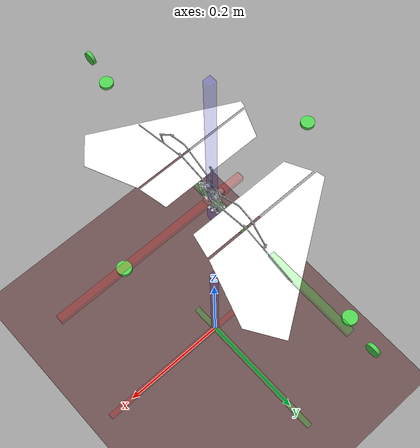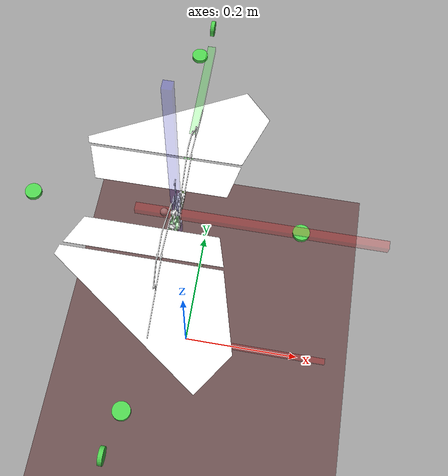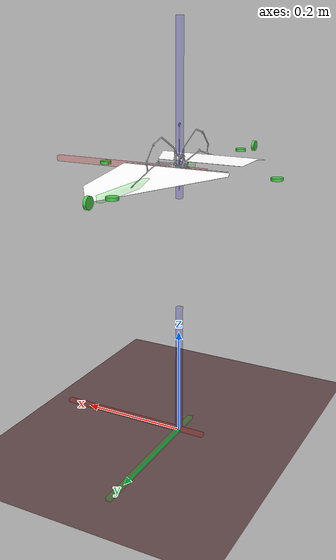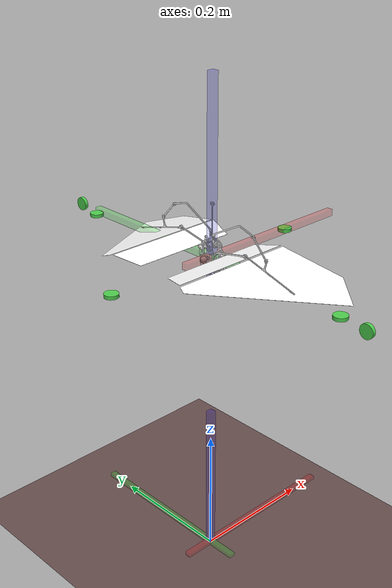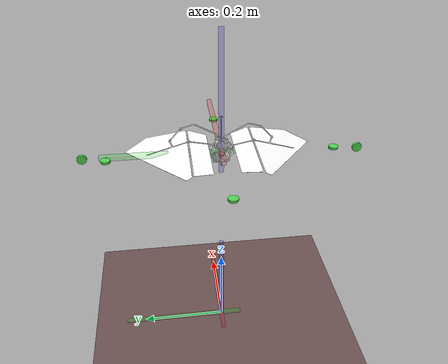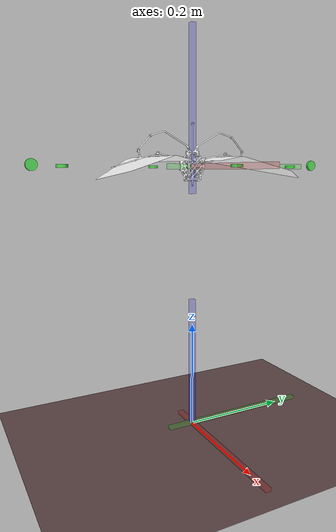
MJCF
<mujoco model="Flappy_v8">
  <compiler angle="radian" meshdir="meshes_v8/" balanceinertia="true" />
  <option impratio="1" gravity="0 0 -9.81"  integrator="implicitfast" density="1.225" viscosity="1.789e-5"> Uncomment this to enable aerodynamics
  </option>
  <visual>
    <global offwidth="3000" offheight="3000"/>
  </visual>
  <asset>
    <texture builtin="gradient" type="skybox" height="100" width="100" rgb1="1 1 1" rgb2=".6 .8 1"/>
    <texture name="texgeom" builtin="flat" height="1278" mark="cross" markrgb="1 1 1" random="0.01" rgb1="0.8 0.6 0.4" rgb2="0.8 0.6 0.4" type="cube" width="127"/>
    <texture name="texplane" builtin="checker" height="100" width="100" rgb1="0 0 0" rgb2="0.8 0.8 0.8" type="2d"/>
    <material name="MatPlane" reflectance="0.5" shininess="1" specular="1" texrepeat="60 60" texture="texplane"/>
    <mesh name="Base" file="Base.STL"/>
    <mesh name="L1" file="L1.STL"/>
    <mesh name="L2" file="L2.STL"/>
    <mesh name="L1R" file="L1R.STL"/>
    <mesh name="L2R" file="L2R.STL"/>
    <mesh name="L3" file="L3.STL"/>
    <mesh name="L7" file="L7.STL"/>
    <mesh name="L6" file="L6.STL"/>
    <mesh name="L5" file="L5.STL"/>
    <mesh name="L4" file="L4.STL"/>
    <mesh name="L3R" file="L3R.STL"/>
    <mesh name="L7R" file="L7R.STL"/>
    <mesh name="L6R" file="L6R.STL"/>
    <mesh name="L5R" file="L5R.STL"/>
    <mesh name="L4R" file="L4R.STL"/>
    <mesh name="Proximal_L" file="Proximal_L.STL"/>
    <mesh name="Proximal_R" file="Proximal_R.STL"/>
    <mesh name="Distal_L" file="Distal_L.STL"/>
    <mesh name="Distal_R" file="Distal_R.STL"/>
  </asset>

  <default>
    <geom contype="0" conaffinity="0" condim="1" solref="0.001 1"/>
    <equality solref="1e-10 1"/>
    <default class="visual">
      <geom group="2" type="mesh" contype="0" conaffinity="0" rgba="1 1 1 1" density="0" />
    </default>
    <default class="collision">
      <geom contype="1" group="3" density="0" />
    </default>
    <default class="aerodynamics">
      <geom group="2" type="mesh" contype="0" conaffinity="0" rgba="1 1 1 1" density="0" fluidshape="ellipsoid"/>
    </default>
  </default>

  <worldbody>
    <light cutoff="100" diffuse="1 1 1" dir="-0 0 -1.3" directional="true" exponent="1" pos="0 0 1.3" specular=".1 .1 .1"/>
    <geom contype="1" conaffinity="1" condim="3" material="MatPlane" name="floor" pos="0 0 0" rgba="0.4 0.3 0.3 1" size="5 5 0.2" type="plane"/>
    <body name='Base' pos='0 0 0.5' quat="1 0 0 0">
      <freejoint/>
      <site name="motor1" type="cylinder" pos="0.148 .0 .0" size=".01 0.0025" quat="1 0 0 0" rgba=".3 .8 .3 1"/> Front
      <site name="motor2" type="cylinder" pos="-0.175 .0 .0" size=".01 0.0025" quat="1 0 0 0" rgba=".3 .8 .3 1"/> Back
      <site name="motor3" type="cylinder" pos="-0.0135 -0.236 .0" size=".01 .0025" quat="1 0 0 0" rgba=".3 .8 .3 1"/> Right
      <site name="motor4" type="cylinder" pos="-0.0135 0.236 .0" size=".01 .0025" quat="1 0 0 0" rgba=".3 .8 .3 1"/> Left

      <site name="motor5" type="cylinder" pos="-0.02309409 -0.28340624 0.00202624" size=".01 .0025" quat="0.7071068 0 0.7071068 0" rgba=".3 .8 .3 1"/> Left
      <site name="motor6" type="cylinder" pos="-0.00397818 0.28319645 0.00210978" size=".01 .0025" quat="0.7071068 0 0.7071068 0" rgba=".3 .8 .3 1"/> Right

      <geom class="collision" mesh="Base"/>
      <geom class="visual" mesh="Base"/>
      <inertial pos="-0.015 0 0" quat="1 0 0 0" mass="0.095" diaginertia="1.905e-03	6.872e-04 2.261e-03"/> With guard (prop)
      <body name="L1" pos="0.0045 -0.01 -0.009798" quat="0.707105 0 0.707108 0">
        <inertial pos="0.0023972 6.0277e-09 0.0024639" quat="0 0.656907 0 0.753971" mass="0.00016152" diaginertia="2.05455e-09 1.8305e-09 5.80302e-10"/>
        <joint name="J1" type='hinge' pos="0 0 0" axis="0 0 -1" damping="0.1"/>
        <geom class="collision" mesh="L1"/>
        <geom class="visual" mesh="L1"/>
        <body name="L2" pos="0.0075 0 -0.0003" quat="0.333342 0 0 0.942806">
          <inertial pos="0.0166046 0.000296703 0.0005" quat="0.0166331 0.706911 -0.0166331 0.706911" mass="0.000195528" diaginertia="2.88378e-08 2.85892e-08 2.81176e-10"/>
          <joint name="J2" type='hinge' pos="0 0 0" axis="0 0 1" damping="0.1"/>
          <geom class="collision" mesh="L2"/>
          <geom class="visual" mesh="L2"/>
          <body name="L4" pos="0.0040958 0.0028679 0.001" quat="0.961311 0 0 0.275467">
            <inertial pos="0.0195927 0.00283964 0.0005" quat="-0.0252401 0.706656 0.0252401 0.706656" mass="0.000187735" diaginertia="2.89369e-08 2.80109e-08 9.57333e-10"/>
            <joint name="J3" type='hinge' pos="0 0 0" axis="0 0 1" damping="0.1"/>
            <geom class="collision" mesh="L4"/>
            <geom class="visual" mesh="L4"/>
            <body name="L5" pos="0.036 0 0" quat="0.850611 0 0 -0.525795">
              <inertial pos="0.0388557 0.00585307 -0.0005" quat="-0.041434 0.705892 0.041434 0.705892" mass="0.000551493" diaginertia="4.88071e-07 4.68887e-07 1.92764e-08"/>
              <joint name="J7" type='hinge' pos="0 0 0" axis="0 0 1" damping="0.1"/>
              <geom class="collision" mesh="L5"/>
              <geom class="visual" mesh="L5"/>
              <body name="L6" pos="0.091031 0 0" quat="0.833767 0 0 -0.552116">
              <inertial pos="0.0183924 -0.000169189 0.0005" quat="0.00123631 0.707106 -0.00123631 0.707106" mass="0.00017604" diaginertia="2.69855e-08 2.68812e-08 1.3361e-10"/>
                <joint name="J9" type='hinge' pos="0 0 0" axis="0 0 1" damping="0.1"/>
                <geom class="collision" mesh="L6"/>
                <geom class="visual" mesh="L6"/>
              </body>
            </body>
          </body>
        </body>
      </body>

      <body name="L3" pos="0.0052 0.020673 0.0075244" quat="0.372893 0.60079 0.372898 0.60079">
        <inertial pos="0.0243413 -0.00482289 -0.0243401" quat="0.795566 -0.0119647 -0.00383338 0.605736" mass="0.00170505" diaginertia="4.01765e-06 3.70297e-06 3.24993e-07"/>
        <joint name="J5" type='hinge' pos="0 0 0" axis="0 0 1" damping="0.1"/>
        <geom class="collision" mesh="L3"/>
        <geom class="visual" mesh="L3"/>
        <geom class="aerodynamics" mesh="Proximal_L"/>
        <body name="L7" pos="0.074121 -0.030565 -0.001" quat="0.932157 0 0 -0.362054">
          <inertial pos="0.0175244 -0.0044015 0.000591145" quat="0.694089 0.156825 0.157693 0.684675" mass="0.00371107" diaginertia="1.26925e-05 9.98807e-06 2.75403e-06"/>
          <joint name="J6" type='hinge' pos="-0.035 0 0.001" axis="0 0 1" damping="0.1"/>
          <geom class="collision" mesh="L7"/>
          <geom class="visual" mesh="L7"/>
          <geom class="aerodynamics" mesh="Distal_L"/>
        </body>
      </body>

      <body name="L1R" pos="-0.0015 0.01 -0.009798" quat="0 0.707108 0 -0.707108">
        <inertial pos="0.00010561 0 0.001" quat="0 0.707107 0 0.707107" mass="0.00044182" diaginertia="2.9266e-08 1.4957e-08 1.4604e-08"/>
        <joint name="J1R" pos="0 0 0" axis="0 0 -1" damping="0.1"/>
        <geom class="collision" mesh="L1R"/>
        <geom class="visual" mesh="L1R"/>
        <body name="L2R" pos="0.0075 0 0.0017" quat="0.333342 0 0 0.942806">
          <inertial pos="0.016605 0.0002967 0.0002" quat="0.0166326 0.706911 -0.0166326 0.706911" mass="0.00019553" diaginertia="2.8838e-08 2.85896e-08 2.81174e-10"/>
          <joint name="J2R" pos="0 0 0" axis="0 0 1" damping="0.1"/>
          <geom class="collision" mesh="L2R"/>
          <geom class="visual" mesh="L2R"/>
          <body name="L4R" pos="0.0040958 0.0028679 0.001" quat="0.961311 0 0 0.275467">
            <inertial pos="0.0195927 0.00283964 0.0005" quat="-0.0252401 0.706656 0.0252401 0.706656" mass="0.000187735" diaginertia="2.89369e-08 2.80109e-08 9.57333e-10"/>
            <joint name="J3R" pos="0 0 0" axis="0 0 1" damping="0.1"/>
            <geom class="collision" mesh="L4R"/>
            <geom class="visual" mesh="L4R"/>
            <body name="L5R" pos="0.036 0 0" quat="0.850611 0 0 -0.525795">
              <inertial pos="0.0388557 0.00585307 -0.0005" quat="-0.041434 0.705892 0.041434 0.705892" mass="0.000551493" diaginertia="4.88071e-07 4.68887e-07 1.92764e-08"/>
              <joint name="J7R" pos="0 0 0" axis="0 0 1" damping="0.1"/>
              <geom class="collision" mesh="L5R"/>
              <geom class="visual" mesh="L5R"/>
              <body name="L6R" pos="0.091031 0 0" quat="0.833767 0 0 -0.552116">
                <inertial pos="0.0183924 -0.000169189 0.0005" quat="0.00123631 0.707106 -0.00123631 0.707106" mass="0.00017604" diaginertia="2.69855e-08 2.68812e-08 1.3361e-10"/>
                <joint name="J9R" pos="0 0 0" axis="0 0 1" damping="0.1"/>
                <geom class="collision" mesh="L6R"/>
                <geom class="visual" mesh="L6R"/>
              </body>
            </body>
          </body>
        </body>
      </body>

      <body name="L3R" pos="-0.0042 -0.020673 0.0075244" quat="0.600789 0.372896 -0.600792 -0.372896">
        <inertial pos="0.0243414 -0.0048229 0.0170716" quat="0.79594 0.00867428 0.00295725 0.605306" mass="0.00170505" diaginertia="3.88055e-06 3.56509e-06 3.26048e-07"/>
        <joint name="J5R" pos="0 0 0" axis="0 0 1" damping="0.1"/>
        <geom class="collision" mesh="L3R"/>
        <geom class="visual" mesh="L3R"/>
        <geom class="aerodynamics" mesh="Proximal_R"/>
        <body name="L7R" pos="0.074121 -0.030565 -0.001" quat="0.932157 0 0 -0.362054">
          <inertial pos="0.0175244 -0.0044015 -0.00700329" quat="0.692947 -0.158508 -0.157599 0.685465" mass="0.00371107" diaginertia="1.27171e-05 1.00415e-05 2.72544e-06"/>
          <joint name="J6R" pos="-0.035 0 0.001" axis="0 0 1" damping="0.1"/>
          <geom class="collision" mesh="L7R"/>
          <geom class="visual" mesh="L7R"/>
          <geom class="aerodynamics" mesh="Distal_R"/>
        </body>
      </body>

      <site name="body_frame" pos="-0.015 0 0" quat="1 0 0 0"/>
      <site name="x_axis_b" type="box" pos=".1 .0 .0" size=".15 .005 .005" quat="1 0 0 0" rgba="1 0 0 0.2"/>
      <site name="y_axis_b" type="box" pos=".0 .1 .0" size=".15 .005 .005" quat=".707 0 0 .707" rgba="0 1 0 0.2"/>
      <site name="z_axis_b" type="box" pos=".0 .0 .1" size=".15 .005 .005" quat="-.707 0 .707 0" rgba="0 0 1 0.2"/>
    </body>
    <site name="x_axis" type="box" pos=".1 .0 .0" size=".15 .005 .005" quat="1 0 0 0" rgba="1 0 0 0.2"/>
    <site name="y_axis" type="box" pos=".0 .1 .0" size=".15 .005 .005" quat=".707 0 0 .707" rgba="0 1 0 0.2"/>
    <site name="z_axis" type="box" pos=".0 .0 .1" size=".15 .005 .005" quat="-.707 0 .707 0" rgba="0 0 1 0.2"/>
  </worldbody>

  <sensor>
    <framepos name="Body_pos" objtype="site" objname="body_frame"/>       <!-- datasensor[0:3] -->
    <framequat name="Body_quat" objtype="site" objname="body_frame"/>     <!-- datasensor[3:7] -->
    <framelinvel name="Body_linvel" objtype="site" objname="body_frame"/> <!-- datasensor[7:10] -->
    <gyro name="Body_angvel_local" site="body_frame"/>                    <!-- datasensor[10:13] -->
  </sensor>

  <equality>
    <connect name = 'J4-eq' body1='L2'  body2='L3' anchor='0.035 0 0.001'/>
    <connect name = 'J8-eq' body1='Base'  body2='L5' anchor='0.0042 0.00929760 0.01993877'/>
    <connect name = 'J10-eq' body1='L6'  body2='L7' anchor='0.036 0 0'/>
    <connect name = 'J4R-eq' body1='L2R'  body2='L3R' anchor='0.035 0 0.001'/>
    <connect name = 'J8R-eq' body1='Base'  body2='L5R' anchor='-0.0032 -0.00929760 0.01993877'/>
    <connect name = 'J10R-eq' body1='L6R'  body2='L7R' anchor='0.036 0 0'/>
    <joint name = 'LeftRight' joint1='J1'  joint2='J1R' polycoef="0 1 0 0 0"/>
    <joint name = 'J5-eq' joint1='J5'  joint2='J5R' polycoef="0 1 0 0 0"/>
    <joint name = 'J6-eq' joint1='J6'  joint2='J6R' polycoef="0 1 0 0 0"/>
  </equality>

  <actuator>
    <velocity name="velocity_servo" joint="J1" ctrllimited="true" ctrlrange="-30 0" kv="3"/> (This is correct now) The "data.ctrl[0]" need set to -29.8451302
    <motor ctrllimited="true" ctrlrange="0 1" gear="0  0. 0.35 0. 0. -0.0056" site="motor1"/> unit: N
    <motor ctrllimited="true" ctrlrange="0 1" gear="0  0. 0.35 0. 0. -0.0056" site="motor2"/>
    <motor ctrllimited="true" ctrlrange="0 1" gear="0  0. 0.35 0. 0. -0.0056" site="motor3"/>
    <motor ctrllimited="true" ctrlrange="0 1" gear="0  0. 0.35 0. 0. -0.0056" site="motor4"/>
    <motor ctrllimited="true" ctrlrange="0 1" gear="0  0. .1 0. 0.  0.0016" site="motor5"/>
    <motor ctrllimited="true" ctrlrange="0 1" gear="0  0. -.1 0. 0. -0.0016" site="motor6"/>
  </actuator>

</mujoco>
